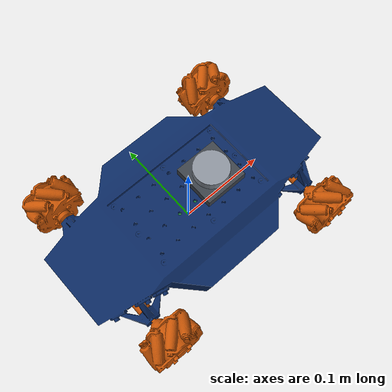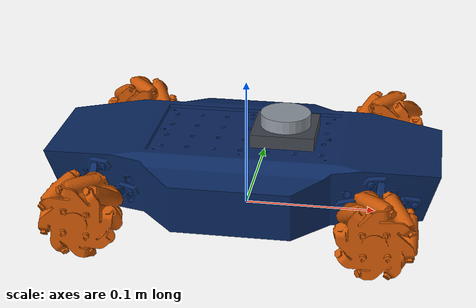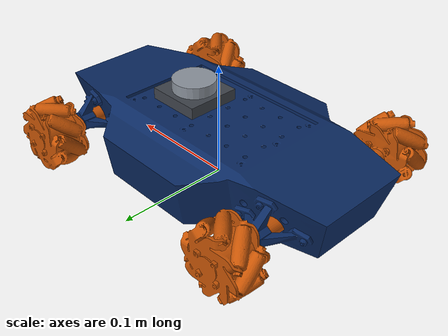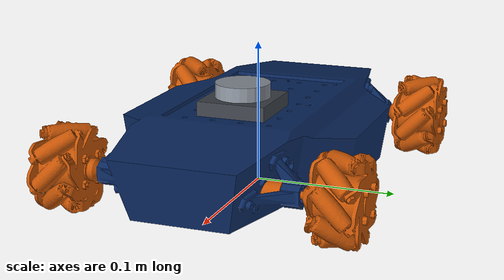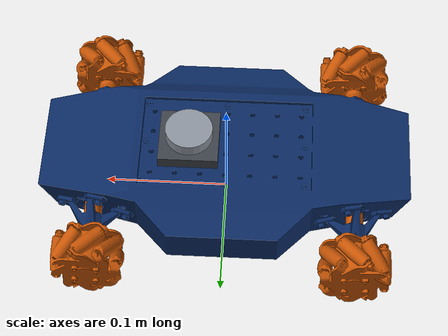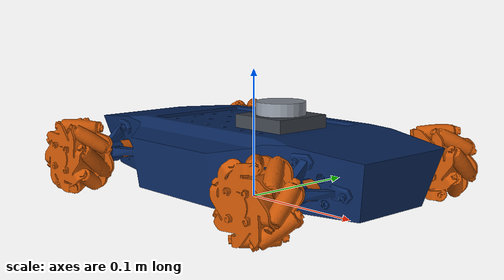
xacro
<?xml version="1.0"?>
<robot name="mobile_base" xmlns:xacro="http://www.ros.org/wiki/xacro">
  <xacro:arg name="prefix" default=""/>
  <xacro:arg name="use_gazebo" default="false"/>
  <xacro:arg name="controllers_file" default=""/>

  <xacro:include filename="materials.xacro"/>
  <xacro:include filename="inertials.xacro"/>
  <xacro:include filename="properties.xacro"/>
  <xacro:include filename="macros/mecanum_wheels.xacro"/>
  <xacro:include filename="base.xacro"/>
  <xacro:include filename="imu.xacro"/>
  <xacro:include filename="lidar.xacro"/>
  <xacro:include filename="mobile_base.ros2_control.xacro"/>
  <xacro:include filename="mobile_base.gazebo.xacro"/>
  <xacro:include filename="imu.gazebo.xacro"/>
  <xacro:include filename="lidar.gazebo.xacro"/>

  <xacro:mobile_base_assembly prefix="$(arg prefix)"/>
  <xacro:mobile_base_imu prefix="$(arg prefix)"/>
  <xacro:mobile_base_lidar prefix="$(arg prefix)"/>

  <xacro:mobile_base_ros2_control
    prefix="$(arg prefix)"
    use_gazebo="$(arg use_gazebo)"
    controllers_file="$(arg controllers_file)"/>

  <xacro:if value="$(arg use_gazebo)">
    <xacro:mobile_base_gazebo controllers_file="$(arg controllers_file)"/>
    <xacro:mobile_base_imu_gazebo prefix="$(arg prefix)"/>
    <xacro:mobile_base_lidar_gazebo prefix="$(arg prefix)"/>
  </xacro:if>
</robot>

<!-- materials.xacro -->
<robot xmlns:xacro="http://www.ros.org/wiki/xacro">
  <material name="base_dark">
    <color rgba="0.10 0.12 0.15 1.0"/>
  </material>
  <material name="base_blue">
    <color rgba="0.04 0.16 0.38 1.0"/>
  </material>
  <material name="wheel_black">
    <color rgba="0.025 0.025 0.025 1.0"/>
  </material>
  <material name="wheel_orange">
    <color rgba="0.78 0.33 0.02 1.0"/>
  </material>
  <material name="electronics_green">
    <color rgba="0.10 0.45 0.22 1.0"/>
  </material>
  <material name="lidar_base_grey">
    <color rgba="0.24 0.26 0.29 1.0"/>
  </material>
  <material name="motor_yellow">
    <color rgba="0.92 0.85 0.15 1.0"/>
  </material>
  <material name="battery_grey">
    <color rgba="0.14 0.15 0.17 1.0"/>
  </material>
  <material name="sensor_grey">
    <color rgba="0.55 0.58 0.62 1.0"/>
  </material>
</robot>

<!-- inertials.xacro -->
<robot xmlns:xacro="http://www.ros.org/wiki/xacro">
  <xacro:macro name="box_inertial" params="mass x y z *origin">
    <inertial>
      <xacro:insert_block name="origin"/>
      <mass value="${mass}"/>
      <inertia
        ixx="${mass * (y * y + z * z) / 12.0}" ixy="0.0" ixz="0.0"
        iyy="${mass * (x * x + z * z) / 12.0}" iyz="0.0"
        izz="${mass * (x * x + y * y) / 12.0}"/>
    </inertial>
  </xacro:macro>

  <xacro:macro name="cylinder_inertial" params="mass radius length *origin">
    <inertial>
      <xacro:insert_block name="origin"/>
      <mass value="${mass}"/>
      <inertia
        ixx="${mass * (3.0 * radius * radius + length * length) / 12.0}"
        ixy="0.0" ixz="0.0"
        iyy="${mass * (3.0 * radius * radius + length * length) / 12.0}"
        iyz="0.0" izz="${mass * radius * radius / 2.0}"/>
    </inertial>
  </xacro:macro>
</robot>

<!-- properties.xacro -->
<robot xmlns:xacro="http://www.ros.org/wiki/xacro">

  <!-- Hull bounding box. The underside sits 11.56 mm off the ground. -->
  <xacro:property name="hull_length" value="0.2959"/>
  <xacro:property name="hull_width" value="0.1688"/>
  <xacro:property name="hull_height" value="0.049"/>
  <xacro:property name="hull_bottom_z" value="0.01156"/>

  <!-- 60 mm printed mecanum wheel: roller envelope 59.92, 31.5 over the
       plates. FL and RR are hand A, FR and RL hand B. -->
  <xacro:property name="wheel_radius" value="0.02996"/>
  <xacro:property name="wheel_width" value="0.0315"/>
  <!-- wheelbase: front-to-rear axle spacing; wheel_separation: track. -->
  <xacro:property name="wheelbase" value="0.210"/>
  <xacro:property name="wheel_separation" value="0.1865"/>

  <!-- base_link sits on the axle line, so the wheel joints are at z = 0. -->
  <xacro:property name="base_link_height" value="${wheel_radius}"/>

  <!-- JGY370 worm motor, direct drive. 100 rpm assumed until the real
       gearing is known: 10.47 rad/s, 0.31 m/s at the wheel. -->
  <xacro:property name="wheel_max_velocity" value="10.47"/>
  <xacro:property name="wheel_joint_damping" value="0.001"/>
  <xacro:property name="wheel_joint_friction" value="0.001"/>

  <xacro:property name="body_mass" value="1.40"/>
  <xacro:property name="body_com_z" value="0.030"/>
  <xacro:property name="wheel_mass" value="0.08"/>

  <!-- Deck plate top face; its M3 insert grid is 20 mm pitch, rows at
       x = 60 .. -60 mm, columns at y = +-10 and +-30 mm. -->
  <xacro:property name="deck_top_z" value="0.05806"/>

  <xacro:property name="lidar_base_size" value="0.048"/>
  <xacro:property name="lidar_base_height" value="0.010"/>
  <xacro:property name="lidar_head_radius" value="0.019"/>
  <xacro:property name="lidar_head_height" value="0.010"/>
  <xacro:property name="lidar_height"
                  value="${lidar_base_height + lidar_head_height}"/>
  <xacro:property name="lidar_collision_z" value="${-lidar_base_height / 2.0}"/>
  <xacro:property name="lidar_mass" value="0.10"/>
  <xacro:property name="lidar_x" value="0.030"/>
  <xacro:property name="lidar_y" value="0.0"/>
  <xacro:property name="lidar_z"
                  value="${deck_top_z + lidar_base_height
                           + lidar_head_height / 2.0 - base_link_height}"/>
  <xacro:property name="lidar_samples" value="720"/>
  <xacro:property name="lidar_update_rate" value="10.0"/>
  <xacro:property name="lidar_min_angle" value="${-pi}"/>
  <xacro:property name="lidar_max_angle" value="${pi}"/>
  <xacro:property name="lidar_min_range" value="0.10"/>
  <xacro:property name="lidar_max_range" value="4.0"/>
  <xacro:property name="lidar_range_resolution" value="0.01"/>
  <xacro:property name="lidar_noise_mean" value="0.0"/>
  <xacro:property name="lidar_noise_stddev" value="0.01"/>

  <!-- Simulated IMU, on the floor of the hull at the centre. -->
  <xacro:property name="imu_length" value="0.025"/>
  <xacro:property name="imu_width" value="0.025"/>
  <xacro:property name="imu_height" value="0.004"/>
  <xacro:property name="imu_mass" value="0.003"/>
  <xacro:property name="imu_x" value="0.0"/>
  <xacro:property name="imu_y" value="0.0"/>
  <xacro:property name="imu_z" value="${0.016 - base_link_height}"/>
  <xacro:property name="imu_update_rate" value="50.0"/>
  <xacro:property name="imu_angular_velocity_noise_mean" value="0.0"/>
  <xacro:property name="imu_angular_velocity_noise_stddev" value="0.002"/>
  <xacro:property name="imu_linear_acceleration_noise_mean" value="0.0"/>
  <xacro:property name="imu_linear_acceleration_noise_stddev" value="0.02"/>
</robot>

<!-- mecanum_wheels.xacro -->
<robot xmlns:xacro="http://www.ros.org/wiki/xacro">
  <xacro:macro name="mecanum_wheel" params="prefix name mesh x y">
    <link name="${prefix}${name}_wheel_link">
      <visual>
        <geometry>
          <mesh filename="package://mobile_base_description/meshes/rev_d/${mesh}"/>
        </geometry>
        <material name="wheel_orange"/>
      </visual>

      <collision name="wheel_collision">
        <origin xyz="0 0 0" rpy="${pi / 2.0} 0 0"/>
        <geometry>
          <cylinder radius="${wheel_radius}" length="${wheel_width}"/>
        </geometry>
      </collision>

      <xacro:cylinder_inertial mass="${wheel_mass}" radius="${wheel_radius}"
                               length="${wheel_width}">
        <origin xyz="0 0 0" rpy="${pi / 2.0} 0 0"/>
      </xacro:cylinder_inertial>
    </link>

    <joint name="${prefix}${name}_wheel_joint" type="continuous">
      <parent link="${prefix}base_link"/>
      <child link="${prefix}${name}_wheel_link"/>
      <origin xyz="${x} ${y} 0" rpy="0 0 0"/>
      <axis xyz="0 1 0"/>
      <dynamics damping="${wheel_joint_damping}"
                friction="${wheel_joint_friction}"/>
      <limit effort="8.0" velocity="${wheel_max_velocity}"/>
    </joint>

    <!-- No contact parameters here: gz sdf -p drops them. generate_sim_sdf.py
         injects the anisotropic mecanum surface after conversion. -->
    <gazebo reference="${prefix}${name}_wheel_link">
      <selfCollide>false</selfCollide>
    </gazebo>
  </xacro:macro>
</robot>

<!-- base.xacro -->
<robot xmlns:xacro="http://www.ros.org/wiki/xacro">
  <xacro:macro name="mobile_base_assembly" params="prefix">
    <link name="${prefix}base_footprint"/>

    <joint name="${prefix}base_footprint_to_base_link_joint" type="fixed">
      <parent link="${prefix}base_footprint"/>
      <child link="${prefix}base_link"/>
      <origin xyz="0 0 ${base_link_height}" rpy="0 0 0"/>
    </joint>

    <link name="${prefix}base_link">
      <visual>
        <origin xyz="0 0 ${-base_link_height}" rpy="0 0 0"/>
        <geometry>
          <mesh filename="package://mobile_base_description/meshes/rev_d/body.stl"/>
        </geometry>
        <material name="base_blue"/>
      </visual>
      <collision>
        <origin xyz="0 0 ${hull_bottom_z + hull_height / 2.0 - base_link_height}"
                rpy="0 0 0"/>
        <geometry>
          <box size="${hull_length} ${hull_width} ${hull_height}"/>
        </geometry>
      </collision>
      <xacro:box_inertial mass="${body_mass}"
                          x="${hull_length}" y="${hull_width}" z="${hull_height}">
        <origin xyz="0 0 ${body_com_z - base_link_height}" rpy="0 0 0"/>
      </xacro:box_inertial>
    </link>

    <!-- Wheel joint names are coupled to ros2_control and controller YAML. -->
    <xacro:mecanum_wheel prefix="${prefix}" name="front_left" mesh="wheel_fl.stl"
                         x="${wheelbase / 2.0}" y="${wheel_separation / 2.0}"/>
    <xacro:mecanum_wheel prefix="${prefix}" name="front_right" mesh="wheel_fr.stl"
                         x="${wheelbase / 2.0}" y="${-wheel_separation / 2.0}"/>
    <xacro:mecanum_wheel prefix="${prefix}" name="rear_right" mesh="wheel_rr.stl"
                         x="${-wheelbase / 2.0}" y="${-wheel_separation / 2.0}"/>
    <xacro:mecanum_wheel prefix="${prefix}" name="rear_left" mesh="wheel_rl.stl"
                         x="${-wheelbase / 2.0}" y="${wheel_separation / 2.0}"/>
  </xacro:macro>
</robot>

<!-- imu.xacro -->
<robot xmlns:xacro="http://www.ros.org/wiki/xacro">
  <xacro:macro name="mobile_base_imu" params="prefix">
    <link name="${prefix}imu_link">
      <visual>
        <geometry>
          <box size="${imu_length} ${imu_width} ${imu_height}"/>
        </geometry>
        <material name="electronics_green"/>
      </visual>
      <collision>
        <geometry>
          <box size="${imu_length} ${imu_width} ${imu_height}"/>
        </geometry>
      </collision>
      <xacro:box_inertial mass="${imu_mass}"
                          x="${imu_length}" y="${imu_width}" z="${imu_height}">
        <origin xyz="0 0 0" rpy="0 0 0"/>
      </xacro:box_inertial>
    </link>

    <joint name="${prefix}base_link_to_imu_link_joint" type="fixed">
      <parent link="${prefix}base_link"/>
      <child link="${prefix}imu_link"/>
      <origin xyz="${imu_x} ${imu_y} ${imu_z}" rpy="0 0 0"/>
    </joint>
  </xacro:macro>
</robot>

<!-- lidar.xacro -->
<robot xmlns:xacro="http://www.ros.org/wiki/xacro">
  <xacro:macro name="mobile_base_lidar" params="prefix">
    <link name="${prefix}lidar_link">
      <visual>
        <origin
          xyz="0 0 ${-lidar_head_height / 2.0 - lidar_base_height / 2.0}"
          rpy="0 0 0"/>
        <geometry>
          <box size="${lidar_base_size} ${lidar_base_size}
                     ${lidar_base_height}"/>
        </geometry>
        <material name="lidar_base_grey"/>
      </visual>
      <visual>
        <origin xyz="0 0 0" rpy="0 0 0"/>
        <geometry>
          <cylinder radius="${lidar_head_radius}"
                    length="${lidar_head_height}"/>
        </geometry>
        <material name="sensor_grey"/>
      </visual>
      <collision>
        <origin xyz="0 0 ${lidar_collision_z}" rpy="0 0 0"/>
        <geometry>
          <box size="${lidar_base_size} ${lidar_base_size}
                     ${lidar_height}"/>
        </geometry>
      </collision>
      <xacro:box_inertial mass="${lidar_mass}"
                          x="${lidar_base_size}" y="${lidar_base_size}"
                          z="${lidar_height}">
        <origin xyz="0 0 ${lidar_collision_z}" rpy="0 0 0"/>
      </xacro:box_inertial>
    </link>

    <joint name="${prefix}base_link_to_lidar_link_joint" type="fixed">
      <parent link="${prefix}base_link"/>
      <child link="${prefix}lidar_link"/>
      <origin xyz="${lidar_x} ${lidar_y} ${lidar_z}" rpy="0 0 0"/>
    </joint>
  </xacro:macro>
</robot>
